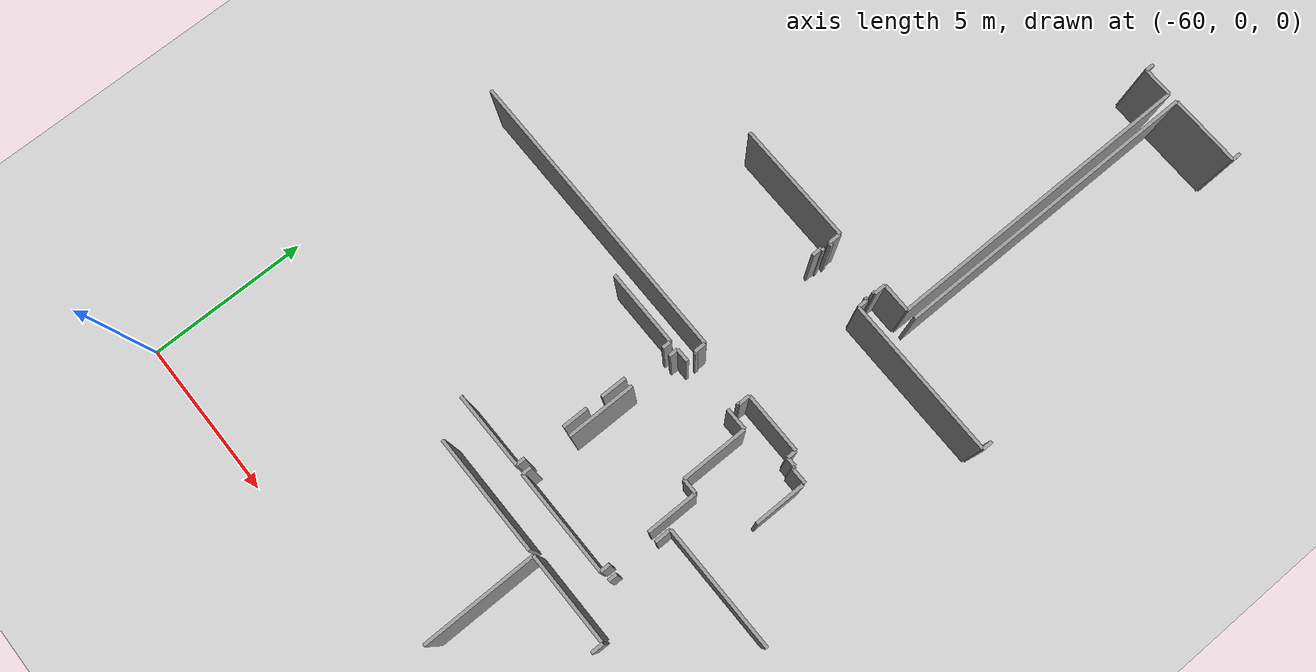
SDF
<sdf version="1.6">
 <world name="default">
  <model name="ground_plane">
   <static>1</static>
   <link name="link">
    <collision name="collision">
     <geometry><plane><normal>0 0 1</normal><size>100 100</size></plane></geometry>
     <surface><friction><ode><mu>100</mu><mu2>50</mu2></ode></friction></surface>
    </collision>
    <visual name="visual">
     <cast_shadows>0</cast_shadows>
     <geometry><plane><normal>0 0 1</normal><size>100 100</size></plane></geometry>
     <material>
      <script><uri>file://media/materials/scripts/gazebo.material</uri><name>Gazebo/Grey</name></script>
     </material>
    </visual>
   </link>
  </model>
  <model name="0510032192_A_40_1_103">
   <static>1</static>
   <link name="Wall_27">
    <collision name="Wall_27_Collision">
     <geometry><box><size>0.278607091586 0.1 2.5</size></box></geometry>
     <pose>0.139303545793 0 1.25 0 0 0</pose>
    </collision>
    <visual name="Wall_27_Visual">
     <pose>0.139303545793 0 1.25 0 0 0</pose>
     <geometry><box><size>0.278607091586 0.1 2.5</size></box></geometry>
     <material>
      <script><uri>file://media/materials/scripts/gazebo.material</uri><name>Gazebo/Grey</name></script>
      <ambient>1 1 1 1</ambient>
     </material>
    </visual>
    <pose>19.4880134158 -0.0254087634825 0 0 0 -1.57079632679</pose>
   </link>
   <link name="Wall_28">
    <collision name="Wall_28_Collision">
     <geometry><box><size>0.910650083214 0.1 2.5</size></box></geometry>
     <pose>0.455325041607 0 1.25 0 0 0</pose>
    </collision>
    <visual name="Wall_28_Visual">
     <pose>0.455325041607 0 1.25 0 0 0</pose>
     <geometry><box><size>0.910650083214 0.1 2.5</size></box></geometry>
     <material>
      <script><uri>file://media/materials/scripts/gazebo.material</uri><name>Gazebo/Grey</name></script>
      <ambient>1 1 1 1</ambient>
     </material>
    </visual>
    <pose>19.4880134158 -0.304015855068 0 0 0 0.0</pose>
   </link>
   <link name="Wall_29">
    <collision name="Wall_29_Collision">
     <geometry><box><size>9.72876144982 0.1 2.5</size></box></geometry>
     <pose>4.86438072491 0 1.25 0 0 0</pose>
    </collision>
    <visual name="Wall_29_Visual">
     <pose>4.86438072491 0 1.25 0 0 0</pose>
     <geometry><box><size>9.72876144982 0.1 2.5</size></box></geometry>
     <material>
      <script><uri>file://media/materials/scripts/gazebo.material</uri><name>Gazebo/Grey</name></script>
      <ambient>1 1 1 1</ambient>
     </material>
    </visual>
    <pose>20.398663499 -0.304015855068 0 0 0 -1.57079632679</pose>
   </link>
   <link name="Wall_30">
    <collision name="Wall_30_Collision">
     <geometry><box><size>0.894007343133 0.1 2.5</size></box></geometry>
     <pose>0.447003671566 0 1.25 0 0 0</pose>
    </collision>
    <visual name="Wall_30_Visual">
     <pose>0.447003671566 0 1.25 0 0 0</pose>
     <geometry><box><size>0.894007343133 0.1 2.5</size></box></geometry>
     <material>
      <script><uri>file://media/materials/scripts/gazebo.material</uri><name>Gazebo/Grey</name></script>
      <ambient>1 1 1 1</ambient>
     </material>
    </visual>
    <pose>20.398663499 -10.0327773049 0 0 0 3.14159265359</pose>
   </link>
   <link name="Wall_31">
    <collision name="Wall_31_Collision">
     <geometry><box><size>0.375541524272 0.1 2.5</size></box></geometry>
     <pose>0.187770762136 0 1.25 0 0 0</pose>
    </collision>
    <visual name="Wall_31_Visual">
     <pose>0.187770762136 0 1.25 0 0 0</pose>
     <geometry><box><size>0.375541524272 0.1 2.5</size></box></geometry>
     <material>
      <script><uri>file://media/materials/scripts/gazebo.material</uri><name>Gazebo/Grey</name></script>
      <ambient>1 1 1 1</ambient>
     </material>
    </visual>
    <pose>19.5046561559 -10.0327773049 0 0 0 -1.57079632679</pose>
   </link>
   <link name="Wall_32">
    <collision name="Wall_32_Collision">
     <geometry><box><size>0.0758451589953 0.1 2.5</size></box></geometry>
     <pose>0.0379225794977 0 1.25 0 0 0</pose>
    </collision>
    <visual name="Wall_32_Visual">
     <pose>0.0379225794977 0 1.25 0 0 0</pose>
     <geometry><box><size>0.0758451589953 0.1 2.5</size></box></geometry>
     <material>
      <script><uri>file://media/materials/scripts/gazebo.material</uri><name>Gazebo/Grey</name></script>
      <ambient>1 1 1 1</ambient>
     </material>
    </visual>
    <pose>19.5046561559 -10.4083188292 0 0 0 3.14159265359</pose>
   </link>
   <link name="Wall_33">
    <collision name="Wall_33_Collision">
     <geometry><box><size>0.11586396148 0.1 2.5</size></box></geometry>
     <pose>0.0579319807402 0 1.25 0 0 0</pose>
    </collision>
    <visual name="Wall_33_Visual">
     <pose>0.0579319807402 0 1.25 0 0 0</pose>
     <geometry><box><size>0.11586396148 0.1 2.5</size></box></geometry>
     <material>
      <script><uri>file://media/materials/scripts/gazebo.material</uri><name>Gazebo/Grey</name></script>
      <ambient>1 1 1 1</ambient>
     </material>
    </visual>
    <pose>17.7698728291 -10.4083188292 0 0 0 3.14159265359</pose>
   </link>
   <link name="Wall_34">
    <collision name="Wall_34_Collision">
     <geometry><box><size>0.3888811251 0.1 2.5</size></box></geometry>
     <pose>0.19444056255 0 1.25 0 0 0</pose>
    </collision>
    <visual name="Wall_34_Visual">
     <pose>0.19444056255 0 1.25 0 0 0</pose>
     <geometry><box><size>0.3888811251 0.1 2.5</size></box></geometry>
     <material>
      <script><uri>file://media/materials/scripts/gazebo.material</uri><name>Gazebo/Grey</name></script>
      <ambient>1 1 1 1</ambient>
     </material>
    </visual>
    <pose>17.6540088677 -10.4083188292 0 0 0 1.57079632679</pose>
   </link>
   <link name="Wall_35">
    <collision name="Wall_35_Collision">
     <geometry><box><size>3.79469751508 0.1 2.5</size></box></geometry>
     <pose>1.89734875754 0 1.25 0 0 0</pose>
    </collision>
    <visual name="Wall_35_Visual">
     <pose>1.89734875754 0 1.25 0 0 0</pose>
     <geometry><box><size>3.79469751508 0.1 2.5</size></box></geometry>
     <material>
      <script><uri>file://media/materials/scripts/gazebo.material</uri><name>Gazebo/Grey</name></script>
      <ambient>1 1 1 1</ambient>
     </material>
    </visual>
    <pose>17.6540088677 -10.0194377041 0 0 0 -3.13790992224</pose>
   </link>
   <link name="Wall_36">
    <collision name="Wall_36_Collision">
     <geometry><box><size>9.72749101165 0.1 2.5</size></box></geometry>
     <pose>4.86374550582 0 1.25 0 0 0</pose>
    </collision>
    <visual name="Wall_36_Visual">
     <pose>4.86374550582 0 1.25 0 0 0</pose>
     <geometry><box><size>9.72749101165 0.1 2.5</size></box></geometry>
     <material>
      <script><uri>file://media/materials/scripts/gazebo.material</uri><name>Gazebo/Grey</name></script>
      <ambient>1 1 1 1</ambient>
     </material>
    </visual>
    <pose>20.6921347173 -10.0289659904 0 0 0 1.57079632679</pose>
   </link>
   <link name="Wall_37">
    <collision name="Wall_37_Collision">
     <geometry><box><size>2.21208694879 0.1 2.5</size></box></geometry>
     <pose>1.10604347439 0 1.25 0 0 0</pose>
    </collision>
    <visual name="Wall_37_Visual">
     <pose>1.10604347439 0 1.25 0 0 0</pose>
     <geometry><box><size>2.21208694879 0.1 2.5</size></box></geometry>
     <material>
      <script><uri>file://media/materials/scripts/gazebo.material</uri><name>Gazebo/Grey</name></script>
      <ambient>1 1 1 1</ambient>
     </material>
    </visual>
    <pose>20.6921347173 -0.30147497872 0 0 0 0.0</pose>
   </link>
   <link name="Wall_38">
    <collision name="Wall_38_Collision">
     <geometry><box><size>0.28330771283 0.1 2.5</size></box></geometry>
     <pose>0.141653856415 0 1.25 0 0 0</pose>
    </collision>
    <visual name="Wall_38_Visual">
     <pose>0.141653856415 0 1.25 0 0 0</pose>
     <geometry><box><size>0.28330771283 0.1 2.5</size></box></geometry>
     <material>
      <script><uri>file://media/materials/scripts/gazebo.material</uri><name>Gazebo/Grey</name></script>
      <ambient>1 1 1 1</ambient>
     </material>
    </visual>
    <pose>22.9042216661 -0.30147497872 0 0 0 1.57079632679</pose>
   </link>
   <link name="Wall_67">
    <collision name="Wall_67_Collision">
     <geometry><box><size>0.32408877822 0.1 2.5</size></box></geometry>
     <pose>0.16204438911 0 1.25 0 0 0</pose>
    </collision>
    <visual name="Wall_67_Visual">
     <pose>0.16204438911 0 1.25 0 0 0</pose>
     <geometry><box><size>0.32408877822 0.1 2.5</size></box></geometry>
     <material>
      <script><uri>file://media/materials/scripts/gazebo.material</uri><name>Gazebo/Grey</name></script>
      <ambient>1 1 1 1</ambient>
     </material>
    </visual>
    <pose>17.6339359445 -10.9920851702 0 0 0 1.57079632679</pose>
   </link>
   <link name="Wall_68">
    <collision name="Wall_68_Collision">
     <geometry><box><size>0.0933772057983 0.1 2.5</size></box></geometry>
     <pose>0.0466886028991 0 1.25 0 0 0</pose>
    </collision>
    <visual name="Wall_68_Visual">
     <pose>0.0466886028991 0 1.25 0 0 0</pose>
     <geometry><box><size>0.0933772057983 0.1 2.5</size></box></geometry>
     <material>
      <script><uri>file://media/materials/scripts/gazebo.material</uri><name>Gazebo/Grey</name></script>
      <ambient>1 1 1 1</ambient>
     </material>
    </visual>
    <pose>17.6339359445 -10.667996392 0 0 0 0.0</pose>
   </link>
   <link name="Wall_69">
    <collision name="Wall_69_Collision">
     <geometry><box><size>0.0994753090341 0.1 2.5</size></box></geometry>
     <pose>0.049737654517 0 1.25 0 0 0</pose>
    </collision>
    <visual name="Wall_69_Visual">
     <pose>0.049737654517 0 1.25 0 0 0</pose>
     <geometry><box><size>0.0994753090341 0.1 2.5</size></box></geometry>
     <material>
      <script><uri>file://media/materials/scripts/gazebo.material</uri><name>Gazebo/Grey</name></script>
      <ambient>1 1 1 1</ambient>
     </material>
    </visual>
    <pose>19.4139468703 -10.667996392 0 0 0 0.0</pose>
   </link>
   <link name="Wall_70">
    <collision name="Wall_70_Collision">
     <geometry><box><size>0.314433448096 0.1 2.5</size></box></geometry>
     <pose>0.157216724048 0 1.25 0 0 0</pose>
    </collision>
    <visual name="Wall_70_Visual">
     <pose>0.157216724048 0 1.25 0 0 0</pose>
     <geometry><box><size>0.314433448096 0.1 2.5</size></box></geometry>
     <material>
      <script><uri>file://media/materials/scripts/gazebo.material</uri><name>Gazebo/Grey</name></script>
      <ambient>1 1 1 1</ambient>
     </material>
    </visual>
    <pose>19.5134221793 -10.667996392 0 0 0 -1.57079632679</pose>
   </link>
   <link name="Wall_71">
    <collision name="Wall_71_Collision">
     <geometry><box><size>4.95140573984 0.1 2.5</size></box></geometry>
     <pose>2.47570286992 0 1.25 0 0 0</pose>
    </collision>
    <visual name="Wall_71_Visual">
     <pose>2.47570286992 0 1.25 0 0 0</pose>
     <geometry><box><size>4.95140573984 0.1 2.5</size></box></geometry>
     <material>
      <script><uri>file://media/materials/scripts/gazebo.material</uri><name>Gazebo/Grey</name></script>
      <ambient>1 1 1 1</ambient>
     </material>
    </visual>
    <pose>19.5134221793 -10.9824298401 0 0 0 0.0</pose>
   </link>
   <link name="Wall_72">
    <collision name="Wall_72_Collision">
     <geometry><box><size>0.311892571748 0.1 2.5</size></box></geometry>
     <pose>0.155946285874 0 1.25 0 0 0</pose>
    </collision>
    <visual name="Wall_72_Visual">
     <pose>0.155946285874 0 1.25 0 0 0</pose>
     <geometry><box><size>0.311892571748 0.1 2.5</size></box></geometry>
     <material>
      <script><uri>file://media/materials/scripts/gazebo.material</uri><name>Gazebo/Grey</name></script>
      <ambient>1 1 1 1</ambient>
     </material>
    </visual>
    <pose>24.4648279191 -10.9824298401 0 0 0 1.57079632679</pose>
   </link>
   <link name="Wall_82">
    <collision name="Wall_82_Collision">
     <geometry><box><size>0.496233150814 0.1 2.5</size></box></geometry>
     <pose>0.248116575407 0 1.25 0 0 0</pose>
    </collision>
    <visual name="Wall_82_Visual">
     <pose>0.248116575407 0 1.25 0 0 0</pose>
     <geometry><box><size>0.496233150814 0.1 2.5</size></box></geometry>
     <material>
      <script><uri>file://media/materials/scripts/gazebo.material</uri><name>Gazebo/Grey</name></script>
      <ambient>1 1 1 1</ambient>
     </material>
    </visual>
    <pose>22.1855347909 -15.1559462859 0 0 0 3.14159265359</pose>
   </link>
   <link name="Wall_83">
    <collision name="Wall_83_Collision">
     <geometry><box><size>0.0829596127704 0.1 2.5</size></box></geometry>
     <pose>0.0414798063852 0 1.25 0 0 0</pose>
    </collision>
    <visual name="Wall_83_Visual">
     <pose>0.0414798063852 0 1.25 0 0 0</pose>
     <geometry><box><size>0.0829596127704 0.1 2.5</size></box></geometry>
     <material>
      <script><uri>file://media/materials/scripts/gazebo.material</uri><name>Gazebo/Grey</name></script>
      <ambient>1 1 1 1</ambient>
     </material>
    </visual>
    <pose>21.6893016401 -15.1559462859 0 0 0 1.57079632679</pose>
   </link>
   <link name="Wall_84">
    <collision name="Wall_84_Collision">
     <geometry><box><size>0.30147497872 0.1 2.5</size></box></geometry>
     <pose>0.15073748936 0 1.25 0 0 0</pose>
    </collision>
    <visual name="Wall_84_Visual">
     <pose>0.15073748936 0 1.25 0 0 0</pose>
     <geometry><box><size>0.30147497872 0.1 2.5</size></box></geometry>
     <material>
      <script><uri>file://media/materials/scripts/gazebo.material</uri><name>Gazebo/Grey</name></script>
      <ambient>1 1 1 1</ambient>
     </material>
    </visual>
    <pose>21.6893016401 -15.0729866731 0 0 0 3.14159265359</pose>
   </link>
   <link name="Wall_85">
    <collision name="Wall_85_Collision">
     <geometry><box><size>0.285721545361 0.1 2.5</size></box></geometry>
     <pose>0.14286077268 0 1.25 0 0 0</pose>
    </collision>
    <visual name="Wall_85_Visual">
     <pose>0.14286077268 0 1.25 0 0 0</pose>
     <geometry><box><size>0.285721545361 0.1 2.5</size></box></geometry>
     <material>
      <script><uri>file://media/materials/scripts/gazebo.material</uri><name>Gazebo/Grey</name></script>
      <ambient>1 1 1 1</ambient>
     </material>
    </visual>
    <pose>21.3878266614 -15.0729866731 0 0 0 1.57079632679</pose>
   </link>
   <link name="Wall_86">
    <collision name="Wall_86_Collision">
     <geometry><box><size>1.89358809854 0.1 2.5</size></box></geometry>
     <pose>0.946794049268 0 1.25 0 0 0</pose>
    </collision>
    <visual name="Wall_86_Visual">
     <pose>0.946794049268 0 1.25 0 0 0</pose>
     <geometry><box><size>1.89358809854 0.1 2.5</size></box></geometry>
     <material>
      <script><uri>file://media/materials/scripts/gazebo.material</uri><name>Gazebo/Grey</name></script>
      <ambient>1 1 1 1</ambient>
     </material>
    </visual>
    <pose>21.3878266614 -14.7872651277 0 0 0 3.14159265359</pose>
   </link>
   <link name="Wall_87">
    <collision name="Wall_87_Collision">
     <geometry><box><size>0.361185572904 0.1 2.5</size></box></geometry>
     <pose>0.180592786452 0 1.25 0 0 0</pose>
    </collision>
    <visual name="Wall_87_Visual">
     <pose>0.180592786452 0 1.25 0 0 0</pose>
     <geometry><box><size>0.361185572904 0.1 2.5</size></box></geometry>
     <material>
      <script><uri>file://media/materials/scripts/gazebo.material</uri><name>Gazebo/Grey</name></script>
      <ambient>1 1 1 1</ambient>
     </material>
    </visual>
    <pose>19.4942385629 -14.7872651277 0 0 0 -1.57079632679</pose>
   </link>
   <link name="Wall_88">
    <collision name="Wall_88_Collision">
     <geometry><box><size>0.0597105941839 0.1 2.5</size></box></geometry>
     <pose>0.029855297092 0 1.25 0 0 0</pose>
    </collision>
    <visual name="Wall_88_Visual">
     <pose>0.029855297092 0 1.25 0 0 0</pose>
     <geometry><box><size>0.0597105941839 0.1 2.5</size></box></geometry>
     <material>
      <script><uri>file://media/materials/scripts/gazebo.material</uri><name>Gazebo/Grey</name></script>
      <ambient>1 1 1 1</ambient>
     </material>
    </visual>
    <pose>19.4942385629 -15.1484507006 0 0 0 3.14159265359</pose>
   </link>
   <link name="Wall_89">
    <collision name="Wall_89_Collision">
     <geometry><box><size>0.0830866565879 0.1 2.5</size></box></geometry>
     <pose>0.0415433282939 0 1.25 0 0 0</pose>
    </collision>
    <visual name="Wall_89_Visual">
     <pose>0.0415433282939 0 1.25 0 0 0</pose>
     <geometry><box><size>0.0830866565879 0.1 2.5</size></box></geometry>
     <material>
      <script><uri>file://media/materials/scripts/gazebo.material</uri><name>Gazebo/Grey</name></script>
      <ambient>1 1 1 1</ambient>
     </material>
    </visual>
    <pose>17.748402424 -15.1484507006 0 0 0 3.14159265359</pose>
   </link>
   <link name="Wall_90">
    <collision name="Wall_90_Collision">
     <geometry><box><size>0.361693748174 0.1 2.5</size></box></geometry>
     <pose>0.180846874087 0 1.25 0 0 0</pose>
    </collision>
    <visual name="Wall_90_Visual">
     <pose>0.180846874087 0 1.25 0 0 0</pose>
     <geometry><box><size>0.361693748174 0.1 2.5</size></box></geometry>
     <material>
      <script><uri>file://media/materials/scripts/gazebo.material</uri><name>Gazebo/Grey</name></script>
      <ambient>1 1 1 1</ambient>
     </material>
    </visual>
    <pose>17.6653157674 -15.1484507006 0 0 0 1.57079632679</pose>
   </link>
   <link name="Wall_91">
    <collision name="Wall_91_Collision">
     <geometry><box><size>9.33810171128 0.1 2.5</size></box></geometry>
     <pose>4.66905085564 0 1.25 0 0 0</pose>
    </collision>
    <visual name="Wall_91_Visual">
     <pose>4.66905085564 0 1.25 0 0 0</pose>
     <geometry><box><size>9.33810171128 0.1 2.5</size></box></geometry>
     <material>
      <script><uri>file://media/materials/scripts/gazebo.material</uri><name>Gazebo/Grey</name></script>
      <ambient>1 1 1 1</ambient>
     </material>
    </visual>
    <pose>17.6653157674 -14.7867569525 0 0 0 3.14159265359</pose>
   </link>
   <link name="Wall_108">
    <collision name="Wall_108_Collision">
     <geometry><box><size>1.57877351899 0.1 2.5</size></box></geometry>
     <pose>0.789386759493 0 1.25 0 0 0</pose>
    </collision>
    <visual name="Wall_108_Visual">
     <pose>0.789386759493 0 1.25 0 0 0</pose>
     <geometry><box><size>1.57877351899 0.1 2.5</size></box></geometry>
     <material>
      <script><uri>file://media/materials/scripts/gazebo.material</uri><name>Gazebo/Grey</name></script>
      <ambient>1 1 1 1</ambient>
     </material>
    </visual>
    <pose>22.1779121619 -16.7981146697 0 0 0 1.57079632679</pose>
   </link>
   <link name="Wall_111">
    <collision name="Wall_111_Collision">
     <geometry><box><size>0.284069975735 0.1 2.5</size></box></geometry>
     <pose>0.142034987867 0 1.25 0 0 0</pose>
    </collision>
    <visual name="Wall_111_Visual">
     <pose>0.142034987867 0 1.25 0 0 0</pose>
     <geometry><box><size>0.284069975735 0.1 2.5</size></box></geometry>
     <material>
      <script><uri>file://media/materials/scripts/gazebo.material</uri><name>Gazebo/Grey</name></script>
      <ambient>1 1 1 1</ambient>
     </material>
    </visual>
    <pose>17.3202647593 -20.6824793871 0 0 0 1.57079632679</pose>
   </link>
   <link name="Wall_112">
    <collision name="Wall_112_Collision">
     <geometry><box><size>2.11502547229 0.1 2.5</size></box></geometry>
     <pose>1.05751273614 0 1.25 0 0 0</pose>
    </collision>
    <visual name="Wall_112_Visual">
     <pose>1.05751273614 0 1.25 0 0 0</pose>
     <geometry><box><size>2.11502547229 0.1 2.5</size></box></geometry>
     <material>
      <script><uri>file://media/materials/scripts/gazebo.material</uri><name>Gazebo/Grey</name></script>
      <ambient>1 1 1 1</ambient>
     </material>
    </visual>
    <pose>17.3202647593 -19.1213649588 0 0 0 1.57079632679</pose>
   </link>
   <link name="Wall_113">
    <collision name="Wall_113_Collision">
     <geometry><box><size>0.281783187021 0.1 2.5</size></box></geometry>
     <pose>0.140891593511 0 1.25 0 0 0</pose>
    </collision>
    <visual name="Wall_113_Visual">
     <pose>0.140891593511 0 1.25 0 0 0</pose>
     <geometry><box><size>0.281783187021 0.1 2.5</size></box></geometry>
     <material>
      <script><uri>file://media/materials/scripts/gazebo.material</uri><name>Gazebo/Grey</name></script>
      <ambient>1 1 1 1</ambient>
     </material>
    </visual>
    <pose>17.3202647593 -15.7399667145 0 0 0 1.57079632679</pose>
   </link>
   <link name="Wall_114">
    <collision name="Wall_114_Collision">
     <geometry><box><size>0.415687370574 0.1 2.5</size></box></geometry>
     <pose>0.207843685287 0 1.25 0 0 0</pose>
    </collision>
    <visual name="Wall_114_Visual">
     <pose>0.207843685287 0 1.25 0 0 0</pose>
     <geometry><box><size>0.415687370574 0.1 2.5</size></box></geometry>
     <material>
      <script><uri>file://media/materials/scripts/gazebo.material</uri><name>Gazebo/Grey</name></script>
      <ambient>1 1 1 1</ambient>
     </material>
    </visual>
    <pose>17.3202647593 -15.4581835275 0 0 0 0.0</pose>
   </link>
   <link name="Wall_115">
    <collision name="Wall_115_Collision">
     <geometry><box><size>0.688577490376 0.1 2.5</size></box></geometry>
     <pose>0.344288745188 0 1.25 0 0 0</pose>
    </collision>
    <visual name="Wall_115_Visual">
     <pose>0.344288745188 0 1.25 0 0 0</pose>
     <geometry><box><size>0.688577490376 0.1 2.5</size></box></geometry>
     <material>
      <script><uri>file://media/materials/scripts/gazebo.material</uri><name>Gazebo/Grey</name></script>
      <ambient>1 1 1 1</ambient>
     </material>
    </visual>
    <pose>19.4112789501 -15.4581835275 0 0 0 0.0</pose>
   </link>
   <link name="Wall_116">
    <collision name="Wall_116_Collision">
     <geometry><box><size>2.06446203296 0.1 2.5</size></box></geometry>
     <pose>1.03223101648 0 1.25 0 0 0</pose>
    </collision>
    <visual name="Wall_116_Visual">
     <pose>1.03223101648 0 1.25 0 0 0</pose>
     <geometry><box><size>2.06446203296 0.1 2.5</size></box></geometry>
     <material>
      <script><uri>file://media/materials/scripts/gazebo.material</uri><name>Gazebo/Grey</name></script>
      <ambient>1 1 1 1</ambient>
     </material>
    </visual>
    <pose>20.0998564405 -15.4581835275 0 0 0 -1.57079632679</pose>
   </link>
   <link name="Wall_117">
    <collision name="Wall_117_Collision">
     <geometry><box><size>0.472603000775 0.1 2.5</size></box></geometry>
     <pose>0.236301500387 0 1.25 0 0 0</pose>
    </collision>
    <visual name="Wall_117_Visual">
     <pose>0.236301500387 0 1.25 0 0 0</pose>
     <geometry><box><size>0.472603000775 0.1 2.5</size></box></geometry>
     <material>
      <script><uri>file://media/materials/scripts/gazebo.material</uri><name>Gazebo/Grey</name></script>
      <ambient>1 1 1 1</ambient>
     </material>
    </visual>
    <pose>20.0998564405 -17.5226455605 0 0 0 0.0</pose>
   </link>
   <link name="Wall_118">
    <collision name="Wall_118_Collision">
     <geometry><box><size>1.57623264264 0.1 2.5</size></box></geometry>
     <pose>0.788116321319 0 1.25 0 0 0</pose>
    </collision>
    <visual name="Wall_118_Visual">
     <pose>0.788116321319 0 1.25 0 0 0</pose>
     <geometry><box><size>1.57623264264 0.1 2.5</size></box></geometry>
     <material>
      <script><uri>file://media/materials/scripts/gazebo.material</uri><name>Gazebo/Grey</name></script>
      <ambient>1 1 1 1</ambient>
     </material>
    </visual>
    <pose>20.5724594413 -17.5226455605 0 0 0 -1.57079632679</pose>
   </link>
   <link name="Wall_119">
    <collision name="Wall_119_Collision">
     <geometry><box><size>0.303126548347 0.1 2.5</size></box></geometry>
     <pose>0.151563274173 0 1.25 0 0 0</pose>
    </collision>
    <visual name="Wall_119_Visual">
     <pose>0.151563274173 0 1.25 0 0 0</pose>
     <geometry><box><size>0.303126548347 0.1 2.5</size></box></geometry>
     <material>
      <script><uri>file://media/materials/scripts/gazebo.material</uri><name>Gazebo/Grey</name></script>
      <ambient>1 1 1 1</ambient>
     </material>
    </visual>
    <pose>20.5724594413 -20.3727465603 0 0 0 -1.57079632679</pose>
   </link>
   <link name="Wall_120">
    <collision name="Wall_120_Collision">
     <geometry><box><size>3.2522013917 0.1 2.5</size></box></geometry>
     <pose>1.62610069585 0 1.25 0 0 0</pose>
    </collision>
    <visual name="Wall_120_Visual">
     <pose>1.62610069585 0 1.25 0 0 0</pose>
     <geometry><box><size>3.2522013917 0.1 2.5</size></box></geometry>
     <material>
      <script><uri>file://media/materials/scripts/gazebo.material</uri><name>Gazebo/Grey</name></script>
      <ambient>1 1 1 1</ambient>
     </material>
    </visual>
    <pose>20.5724594413 -20.6758731086 0 0 0 -3.13956132703</pose>
   </link>
   <link name="Wall_122">
    <collision name="Wall_122_Collision">
     <geometry><box><size>0.801900575508 0.1 2.5</size></box></geometry>
     <pose>0.400950287754 0 1.25 0 0 0</pose>
    </collision>
    <visual name="Wall_122_Visual">
     <pose>0.400950287754 0 1.25 0 0 0</pose>
     <geometry><box><size>0.801900575508 0.1 2.5</size></box></geometry>
     <material>
      <script><uri>file://media/materials/scripts/gazebo.material</uri><name>Gazebo/Grey</name></script>
      <ambient>1 1 1 1</ambient>
     </material>
    </visual>
    <pose>17.040768361 -17.8191658303 0 0 0 1.57079632679</pose>
   </link>
   <link name="Wall_123">
    <collision name="Wall_123_Collision">
     <geometry><box><size>0.27695552196 0.1 2.5</size></box></geometry>
     <pose>0.13847776098 0 1.25 0 0 0</pose>
    </collision>
    <visual name="Wall_123_Visual">
     <pose>0.13847776098 0 1.25 0 0 0</pose>
     <geometry><box><size>0.27695552196 0.1 2.5</size></box></geometry>
     <material>
      <script><uri>file://media/materials/scripts/gazebo.material</uri><name>Gazebo/Grey</name></script>
      <ambient>1 1 1 1</ambient>
     </material>
    </visual>
    <pose>17.040768361 -15.7446673358 0 0 0 1.57079632679</pose>
   </link>
   <link name="Wall_124">
    <collision name="Wall_124_Collision">
     <geometry><box><size>2.372670334 0.1 2.5</size></box></geometry>
     <pose>1.186335167 0 1.25 0 0 0</pose>
    </collision>
    <visual name="Wall_124_Visual">
     <pose>1.186335167 0 1.25 0 0 0</pose>
     <geometry><box><size>2.372670334 0.1 2.5</size></box></geometry>
     <material>
      <script><uri>file://media/materials/scripts/gazebo.material</uri><name>Gazebo/Grey</name></script>
      <ambient>1 1 1 1</ambient>
     </material>
    </visual>
    <pose>17.040768361 -15.4677118138 0 0 0 3.14159265359</pose>
   </link>
   <link name="Wall_128">
    <collision name="Wall_128_Collision">
     <geometry><box><size>0.790847763394 0.1 2.5</size></box></geometry>
     <pose>0.395423881697 0 1.25 0 0 0</pose>
    </collision>
    <visual name="Wall_128_Visual">
     <pose>0.395423881697 0 1.25 0 0 0</pose>
     <geometry><box><size>0.790847763394 0.1 2.5</size></box></geometry>
     <material>
      <script><uri>file://media/materials/scripts/gazebo.material</uri><name>Gazebo/Grey</name></script>
      <ambient>1 1 1 1</ambient>
     </material>
    </visual>
    <pose>17.0298425927 -18.3025675555 0 0 0 -1.57079632679</pose>
   </link>
   <link name="Wall_129">
    <collision name="Wall_129_Collision">
     <geometry><box><size>0.274160557976 0.1 2.5</size></box></geometry>
     <pose>0.137080278988 0 1.25 0 0 0</pose>
    </collision>
    <visual name="Wall_129_Visual">
     <pose>0.137080278988 0 1.25 0 0 0</pose>
     <geometry><box><size>0.274160557976 0.1 2.5</size></box></geometry>
     <material>
      <script><uri>file://media/materials/scripts/gazebo.material</uri><name>Gazebo/Grey</name></script>
      <ambient>1 1 1 1</ambient>
     </material>
    </visual>
    <pose>17.0298425927 -20.3768119624 0 0 0 -1.57079632679</pose>
   </link>
   <link name="Wall_130">
    <collision name="Wall_130_Collision">
     <geometry><box><size>2.36740916158 0.1 2.5</size></box></geometry>
     <pose>1.18370458079 0 1.25 0 0 0</pose>
    </collision>
    <visual name="Wall_130_Visual">
     <pose>1.18370458079 0 1.25 0 0 0</pose>
     <geometry><box><size>2.36740916158 0.1 2.5</size></box></geometry>
     <material>
      <script><uri>file://media/materials/scripts/gazebo.material</uri><name>Gazebo/Grey</name></script>
      <ambient>1 1 1 1</ambient>
     </material>
    </visual>
    <pose>17.0298425927 -20.6509725204 0 0 0 -3.13365034984</pose>
   </link>
   <link name="Wall_131">
    <collision name="Wall_131_Collision">
     <geometry><box><size>0.274668733246 0.1 2.5</size></box></geometry>
     <pose>0.137334366623 0 1.25 0 0 0</pose>
    </collision>
    <visual name="Wall_131_Visual">
     <pose>0.137334366623 0 1.25 0 0 0</pose>
     <geometry><box><size>0.274668733246 0.1 2.5</size></box></geometry>
     <material>
      <script><uri>file://media/materials/scripts/gazebo.material</uri><name>Gazebo/Grey</name></script>
      <ambient>1 1 1 1</ambient>
     </material>
    </visual>
    <pose>20.8800325232 -20.6643121213 0 0 0 1.57079632679</pose>
   </link>
   <link name="Wall_132">
    <collision name="Wall_132_Collision">
     <geometry><box><size>0.506269612389 0.1 2.5</size></box></geometry>
     <pose>0.253134806195 0 1.25 0 0 0</pose>
    </collision>
    <visual name="Wall_132_Visual">
     <pose>0.253134806195 0 1.25 0 0 0</pose>
     <geometry><box><size>0.506269612389 0.1 2.5</size></box></geometry>
     <material>
      <script><uri>file://media/materials/scripts/gazebo.material</uri><name>Gazebo/Grey</name></script>
      <ambient>1 1 1 1</ambient>
     </material>
    </visual>
    <pose>20.8800325232 -19.1166643375 0 0 0 1.57079632679</pose>
   </link>
   <link name="Wall_133">
    <collision name="Wall_133_Collision">
     <geometry><box><size>3.87509051872 0.1 2.5</size></box></geometry>
     <pose>1.93754525936 0 1.25 0 0 0</pose>
    </collision>
    <visual name="Wall_133_Visual">
     <pose>1.93754525936 0 1.25 0 0 0</pose>
     <geometry><box><size>3.87509051872 0.1 2.5</size></box></geometry>
     <material>
      <script><uri>file://media/materials/scripts/gazebo.material</uri><name>Gazebo/Grey</name></script>
      <ambient>1 1 1 1</ambient>
     </material>
    </visual>
    <pose>20.8800325232 -18.6103947251 0 0 0 0.0</pose>
   </link>
   <link name="Wall_400">
    <collision name="Wall_400_Collision">
     <geometry><box><size>3.70053231359 0.1 2.5</size></box></geometry>
     <pose>1.8502661568 0 1.25 0 0 0</pose>
    </collision>
    <visual name="Wall_400_Visual">
     <pose>1.8502661568 0 1.25 0 0 0</pose>
     <geometry><box><size>3.70053231359 0.1 2.5</size></box></geometry>
     <material>
      <script><uri>file://media/materials/scripts/gazebo.material</uri><name>Gazebo/Grey</name></script>
      <ambient>1 1 1 1</ambient>
     </material>
    </visual>
    <pose>18.9850469427 -21.7471065771 0 0 0 3.14159265359</pose>
   </link>
   <link name="Wall_407">
    <collision name="Wall_407_Collision">
     <geometry><box><size>2.8104633288 0.1 2.5</size></box></geometry>
     <pose>1.4052316644 0 1.25 0 0 0</pose>
    </collision>
    <visual name="Wall_407_Visual">
     <pose>1.4052316644 0 1.25 0 0 0</pose>
     <geometry><box><size>2.8104633288 0.1 2.5</size></box></geometry>
     <material>
      <script><uri>file://media/materials/scripts/gazebo.material</uri><name>Gazebo/Grey</name></script>
      <ambient>1 1 1 1</ambient>
     </material>
    </visual>
    <pose>21.9658760306 -21.7518071983 0 0 0 3.14159265359</pose>
   </link>
   <link name="Wall_408">
    <collision name="Wall_408_Collision">
     <geometry><box><size>3.53398970694 0.1 2.5</size></box></geometry>
     <pose>1.76699485347 0 1.25 0 0 0</pose>
    </collision>
    <visual name="Wall_408_Visual">
     <pose>1.76699485347 0 1.25 0 0 0</pose>
     <geometry><box><size>3.53398970694 0.1 2.5</size></box></geometry>
     <material>
      <script><uri>file://media/materials/scripts/gazebo.material</uri><name>Gazebo/Grey</name></script>
      <ambient>1 1 1 1</ambient>
     </material>
    </visual>
    <pose>19.1554127018 -21.7518071983 0 0 0 -1.56820798732</pose>
   </link>
   <link name="Wall_412">
    <collision name="Wall_412_Collision">
     <geometry><box><size>0.375668568089 0.1 2.5</size></box></geometry>
     <pose>0.187834284045 0 1.25 0 0 0</pose>
    </collision>
    <visual name="Wall_412_Visual">
     <pose>0.187834284045 0 1.25 0 0 0</pose>
     <geometry><box><size>0.375668568089 0.1 2.5</size></box></geometry>
     <material>
      <script><uri>file://media/materials/scripts/gazebo.material</uri><name>Gazebo/Grey</name></script>
      <ambient>1 1 1 1</ambient>
     </material>
    </visual>
    <pose>22.010849542 -21.7516801545 0 0 0 -1.57079632679</pose>
   </link>
   <pose>-67.5 26.6902360474 0 0 0 0</pose>
  </model>
 </world>
</sdf>
